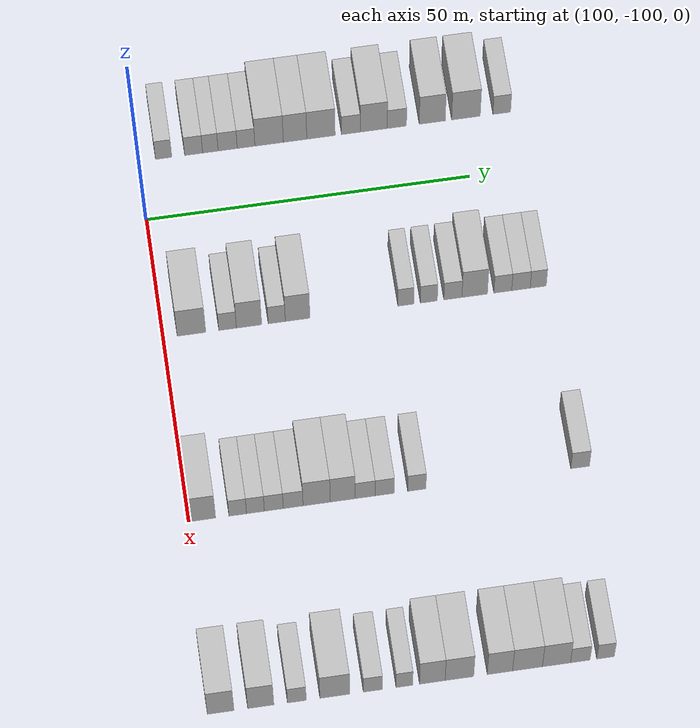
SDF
<sdf version="1.6">
 <world name="default">
  <model name="building_530">
   <static>1</static>
   <pose>85.0000 -96.0680 0 0.000000 0.000000 0.000000</pose>
   <link name="link">
    <pose>0 0 3.00 0 0 0</pose>
    <collision name="collision"><geometry><box><size>10.0000 2.5317 6.0000</size></box></geometry></collision>
    <visual name="visual">
     <cast_shadows>0</cast_shadows>
     <geometry><box><size>10.0000 2.5317 6.0000</size></box></geometry>
     <material>
      <script>
       <uri>model://HANNAS_wall/materials/scripts</uri>
       <uri>model://HANNAS_wall/materials/textures</uri>
       <name>vrc/HANNAS_wall</name>
      </script>
     </material>
    </visual>
   </link>
  </model>
  <model name="building_531">
   <static>1</static>
   <pose>85.0000 -91.4105 0 0.000000 0.000000 0.000000</pose>
   <link name="link">
    <pose>0 0 3.00 0 0 0</pose>
    <collision name="collision"><geometry><box><size>10.0000 2.7833 6.0000</size></box></geometry></collision>
    <visual name="visual">
     <cast_shadows>0</cast_shadows>
     <geometry><box><size>10.0000 2.7833 6.0000</size></box></geometry>
     <material>
      <script>
       <uri>model://HANNAS_wall/materials/scripts</uri>
       <uri>model://HANNAS_wall/materials/textures</uri>
       <name>vrc/HANNAS_wall</name>
      </script>
     </material>
    </visual>
   </link>
  </model>
  <model name="building_532">
   <static>1</static>
   <pose>85.0000 -88.8145 0 0.000000 0.000000 0.000000</pose>
   <link name="link">
    <pose>0 0 3.00 0 0 0</pose>
    <collision name="collision"><geometry><box><size>10.0000 2.4086 6.0000</size></box></geometry></collision>
    <visual name="visual">
     <cast_shadows>0</cast_shadows>
     <geometry><box><size>10.0000 2.4086 6.0000</size></box></geometry>
     <material>
      <script>
       <uri>model://HANNAS_wall/materials/scripts</uri>
       <uri>model://HANNAS_wall/materials/textures</uri>
       <name>vrc/HANNAS_wall</name>
      </script>
     </material>
    </visual>
   </link>
  </model>
  <model name="building_533">
   <static>1</static>
   <pose>85.0000 -86.1273 0 0.000000 0.000000 0.000000</pose>
   <link name="link">
    <pose>0 0 3.00 0 0 0</pose>
    <collision name="collision"><geometry><box><size>10.0000 2.9657 6.0000</size></box></geometry></collision>
    <visual name="visual">
     <cast_shadows>0</cast_shadows>
     <geometry><box><size>10.0000 2.9657 6.0000</size></box></geometry>
     <material>
      <script>
       <uri>model://HANNAS_wall/materials/scripts</uri>
       <uri>model://HANNAS_wall/materials/textures</uri>
       <name>vrc/HANNAS_wall</name>
      </script>
     </material>
    </visual>
   </link>
  </model>
  <model name="building_534">
   <static>1</static>
   <pose>85.0000 -83.2650 0 0.000000 0.000000 0.000000</pose>
   <link name="link">
    <pose>0 0 3.00 0 0 0</pose>
    <collision name="collision"><geometry><box><size>10.0000 2.7589 6.0000</size></box></geometry></collision>
    <visual name="visual">
     <cast_shadows>0</cast_shadows>
     <geometry><box><size>10.0000 2.7589 6.0000</size></box></geometry>
     <material>
      <script>
       <uri>model://HANNAS_wall/materials/scripts</uri>
       <uri>model://HANNAS_wall/materials/textures</uri>
       <name>vrc/HANNAS_wall</name>
      </script>
     </material>
    </visual>
   </link>
  </model>
  <model name="building_535">
   <static>1</static>
   <pose>85.0000 -79.6711 0 0.000000 0.000000 0.000000</pose>
   <link name="link">
    <pose>0 0 4.50 0 0 0</pose>
    <collision name="collision"><geometry><box><size>10.0000 4.4289 9.0000</size></box></geometry></collision>
    <visual name="visual">
     <cast_shadows>0</cast_shadows>
     <geometry><box><size>10.0000 4.4289 9.0000</size></box></geometry>
     <material>
      <script>
       <uri>model://HANNAS_wall/materials/scripts</uri>
       <uri>model://HANNAS_wall/materials/textures</uri>
       <name>vrc/HANNAS_wall</name>
      </script>
     </material>
    </visual>
   </link>
  </model>
  <model name="building_536">
   <static>1</static>
   <pose>85.0000 -75.6272 0 0.000000 0.000000 0.000000</pose>
   <link name="link">
    <pose>0 0 4.50 0 0 0</pose>
    <collision name="collision"><geometry><box><size>10.0000 3.6591 9.0000</size></box></geometry></collision>
    <visual name="visual">
     <cast_shadows>0</cast_shadows>
     <geometry><box><size>10.0000 3.6591 9.0000</size></box></geometry>
     <material>
      <script>
       <uri>model://HANNAS_wall/materials/scripts</uri>
       <uri>model://HANNAS_wall/materials/textures</uri>
       <name>vrc/HANNAS_wall</name>
      </script>
     </material>
    </visual>
   </link>
  </model>
  <model name="building_537">
   <static>1</static>
   <pose>85.0000 -71.5909 0 0.000000 0.000000 0.000000</pose>
   <link name="link">
    <pose>0 0 4.50 0 0 0</pose>
    <collision name="collision"><geometry><box><size>10.0000 4.4135 9.0000</size></box></geometry></collision>
    <visual name="visual">
     <cast_shadows>0</cast_shadows>
     <geometry><box><size>10.0000 4.4135 9.0000</size></box></geometry>
     <material>
      <script>
       <uri>model://HANNAS_wall/materials/scripts</uri>
       <uri>model://HANNAS_wall/materials/textures</uri>
       <name>vrc/HANNAS_wall</name>
      </script>
     </material>
    </visual>
   </link>
  </model>
  <model name="building_538">
   <static>1</static>
   <pose>85.0000 -66.9164 0 0.000000 0.000000 0.000000</pose>
   <link name="link">
    <pose>0 0 3.00 0 0 0</pose>
    <collision name="collision"><geometry><box><size>10.0000 2.9355 6.0000</size></box></geometry></collision>
    <visual name="visual">
     <cast_shadows>0</cast_shadows>
     <geometry><box><size>10.0000 2.9355 6.0000</size></box></geometry>
     <material>
      <script>
       <uri>model://HANNAS_wall/materials/scripts</uri>
       <uri>model://HANNAS_wall/materials/textures</uri>
       <name>vrc/HANNAS_wall</name>
      </script>
     </material>
    </visual>
   </link>
  </model>
  <model name="building_539">
   <static>1</static>
   <pose>85.0000 -63.3426 0 0.000000 0.000000 0.000000</pose>
   <link name="link">
    <pose>0 0 4.50 0 0 0</pose>
    <collision name="collision"><geometry><box><size>10.0000 4.2120 9.0000</size></box></geometry></collision>
    <visual name="visual">
     <cast_shadows>0</cast_shadows>
     <geometry><box><size>10.0000 4.2120 9.0000</size></box></geometry>
     <material>
      <script>
       <uri>model://HANNAS_wall/materials/scripts</uri>
       <uri>model://HANNAS_wall/materials/textures</uri>
       <name>vrc/HANNAS_wall</name>
      </script>
     </material>
    </visual>
   </link>
  </model>
  <model name="building_540">
   <static>1</static>
   <pose>85.0000 -59.7452 0 0.000000 0.000000 0.000000</pose>
   <link name="link">
    <pose>0 0 3.00 0 0 0</pose>
    <collision name="collision"><geometry><box><size>10.0000 2.9827 6.0000</size></box></geometry></collision>
    <visual name="visual">
     <cast_shadows>0</cast_shadows>
     <geometry><box><size>10.0000 2.9827 6.0000</size></box></geometry>
     <material>
      <script>
       <uri>model://HANNAS_wall/materials/scripts</uri>
       <uri>model://HANNAS_wall/materials/textures</uri>
       <name>vrc/HANNAS_wall</name>
      </script>
     </material>
    </visual>
   </link>
  </model>
  <model name="building_541">
   <static>1</static>
   <pose>85.0000 -54.2166 0 0.000000 0.000000 0.000000</pose>
   <link name="link">
    <pose>0 0 4.50 0 0 0</pose>
    <collision name="collision"><geometry><box><size>10.0000 4.0745 9.0000</size></box></geometry></collision>
    <visual name="visual">
     <cast_shadows>0</cast_shadows>
     <geometry><box><size>10.0000 4.0745 9.0000</size></box></geometry>
     <material>
      <script>
       <uri>model://HANNAS_wall/materials/scripts</uri>
       <uri>model://HANNAS_wall/materials/textures</uri>
       <name>vrc/HANNAS_wall</name>
      </script>
     </material>
    </visual>
   </link>
  </model>
  <model name="building_542">
   <static>1</static>
   <pose>85.0000 -48.9442 0 0.000000 0.000000 0.000000</pose>
   <link name="link">
    <pose>0 0 4.50 0 0 0</pose>
    <collision name="collision"><geometry><box><size>10.0000 4.4703 9.0000</size></box></geometry></collision>
    <visual name="visual">
     <cast_shadows>0</cast_shadows>
     <geometry><box><size>10.0000 4.4703 9.0000</size></box></geometry>
     <material>
      <script>
       <uri>model://HANNAS_wall/materials/scripts</uri>
       <uri>model://HANNAS_wall/materials/textures</uri>
       <name>vrc/HANNAS_wall</name>
      </script>
     </material>
    </visual>
   </link>
  </model>
  <model name="building_543">
   <static>1</static>
   <pose>85.0000 -43.3346 0 0.000000 0.000000 0.000000</pose>
   <link name="link">
    <pose>0 0 3.00 0 0 0</pose>
    <collision name="collision"><geometry><box><size>10.0000 2.7489 6.0000</size></box></geometry></collision>
    <visual name="visual">
     <cast_shadows>0</cast_shadows>
     <geometry><box><size>10.0000 2.7489 6.0000</size></box></geometry>
     <material>
      <script>
       <uri>model://HANNAS_wall/materials/scripts</uri>
       <uri>model://HANNAS_wall/materials/textures</uri>
       <name>vrc/HANNAS_wall</name>
      </script>
     </material>
    </visual>
   </link>
  </model>
  <model name="building_762">
   <static>1</static>
   <pose>115.0000 -95.6572 0 0.000000 0.000000 0.000000</pose>
   <link name="link">
    <pose>0 0 4.50 0 0 0</pose>
    <collision name="collision"><geometry><box><size>10.0000 4.3478 9.0000</size></box></geometry></collision>
    <visual name="visual">
     <cast_shadows>0</cast_shadows>
     <geometry><box><size>10.0000 4.3478 9.0000</size></box></geometry>
     <material>
      <script>
       <uri>model://HANNAS_wall/materials/scripts</uri>
       <uri>model://HANNAS_wall/materials/textures</uri>
       <name>vrc/HANNAS_wall</name>
      </script>
     </material>
    </visual>
   </link>
  </model>
  <model name="building_763">
   <static>1</static>
   <pose>115.0000 -90.1436 0 0.000000 0.000000 0.000000</pose>
   <link name="link">
    <pose>0 0 3.00 0 0 0</pose>
    <collision name="collision"><geometry><box><size>10.0000 2.6794 6.0000</size></box></geometry></collision>
    <visual name="visual">
     <cast_shadows>0</cast_shadows>
     <geometry><box><size>10.0000 2.6794 6.0000</size></box></geometry>
     <material>
      <script>
       <uri>model://HANNAS_wall/materials/scripts</uri>
       <uri>model://HANNAS_wall/materials/textures</uri>
       <name>vrc/HANNAS_wall</name>
      </script>
     </material>
    </visual>
   </link>
  </model>
  <model name="building_764">
   <static>1</static>
   <pose>115.0000 -86.8803 0 0.000000 0.000000 0.000000</pose>
   <link name="link">
    <pose>0 0 4.50 0 0 0</pose>
    <collision name="collision"><geometry><box><size>10.0000 3.8473 9.0000</size></box></geometry></collision>
    <visual name="visual">
     <cast_shadows>0</cast_shadows>
     <geometry><box><size>10.0000 3.8473 9.0000</size></box></geometry>
     <material>
      <script>
       <uri>model://HANNAS_wall/materials/scripts</uri>
       <uri>model://HANNAS_wall/materials/textures</uri>
       <name>vrc/HANNAS_wall</name>
      </script>
     </material>
    </visual>
   </link>
  </model>
  <model name="building_765">
   <static>1</static>
   <pose>115.0000 -82.6501 0 0.000000 0.000000 0.000000</pose>
   <link name="link">
    <pose>0 0 3.00 0 0 0</pose>
    <collision name="collision"><geometry><box><size>10.0000 2.6130 6.0000</size></box></geometry></collision>
    <visual name="visual">
     <cast_shadows>0</cast_shadows>
     <geometry><box><size>10.0000 2.6130 6.0000</size></box></geometry>
     <material>
      <script>
       <uri>model://HANNAS_wall/materials/scripts</uri>
       <uri>model://HANNAS_wall/materials/textures</uri>
       <name>vrc/HANNAS_wall</name>
      </script>
     </material>
    </visual>
   </link>
  </model>
  <model name="building_766">
   <static>1</static>
   <pose>115.0000 -79.4678 0 0.000000 0.000000 0.000000</pose>
   <link name="link">
    <pose>0 0 4.50 0 0 0</pose>
    <collision name="collision"><geometry><box><size>10.0000 3.7517 9.0000</size></box></geometry></collision>
    <visual name="visual">
     <cast_shadows>0</cast_shadows>
     <geometry><box><size>10.0000 3.7517 9.0000</size></box></geometry>
     <material>
      <script>
       <uri>model://HANNAS_wall/materials/scripts</uri>
       <uri>model://HANNAS_wall/materials/textures</uri>
       <name>vrc/HANNAS_wall</name>
      </script>
     </material>
    </visual>
   </link>
  </model>
  <model name="building_767">
   <static>1</static>
   <pose>115.0000 -62.9180 0 0.000000 0.000000 0.000000</pose>
   <link name="link">
    <pose>0 0 3.00 0 0 0</pose>
    <collision name="collision"><geometry><box><size>10.0000 2.4493 6.0000</size></box></geometry></collision>
    <visual name="visual">
     <cast_shadows>0</cast_shadows>
     <geometry><box><size>10.0000 2.4493 6.0000</size></box></geometry>
     <material>
      <script>
       <uri>model://HANNAS_wall/materials/scripts</uri>
       <uri>model://HANNAS_wall/materials/textures</uri>
       <name>vrc/HANNAS_wall</name>
      </script>
     </material>
    </visual>
   </link>
  </model>
  <model name="building_768">
   <static>1</static>
   <pose>115.0000 -59.3934 0 0.000000 0.000000 0.000000</pose>
   <link name="link">
    <pose>0 0 3.00 0 0 0</pose>
    <collision name="collision"><geometry><box><size>10.0000 2.5999 6.0000</size></box></geometry></collision>
    <visual name="visual">
     <cast_shadows>0</cast_shadows>
     <geometry><box><size>10.0000 2.5999 6.0000</size></box></geometry>
     <material>
      <script>
       <uri>model://HANNAS_wall/materials/scripts</uri>
       <uri>model://HANNAS_wall/materials/textures</uri>
       <name>vrc/HANNAS_wall</name>
      </script>
     </material>
    </visual>
   </link>
  </model>
  <model name="building_769">
   <static>1</static>
   <pose>115.0000 -55.7034 0 0.000000 0.000000 0.000000</pose>
   <link name="link">
    <pose>0 0 3.00 0 0 0</pose>
    <collision name="collision"><geometry><box><size>10.0000 2.7802 6.0000</size></box></geometry></collision>
    <visual name="visual">
     <cast_shadows>0</cast_shadows>
     <geometry><box><size>10.0000 2.7802 6.0000</size></box></geometry>
     <material>
      <script>
       <uri>model://HANNAS_wall/materials/scripts</uri>
       <uri>model://HANNAS_wall/materials/textures</uri>
       <name>vrc/HANNAS_wall</name>
      </script>
     </material>
    </visual>
   </link>
  </model>
  <model name="building_770">
   <static>1</static>
   <pose>115.0000 -52.3634 0 0.000000 0.000000 0.000000</pose>
   <link name="link">
    <pose>0 0 4.50 0 0 0</pose>
    <collision name="collision"><geometry><box><size>10.0000 3.8999 9.0000</size></box></geometry></collision>
    <visual name="visual">
     <cast_shadows>0</cast_shadows>
     <geometry><box><size>10.0000 3.8999 9.0000</size></box></geometry>
     <material>
      <script>
       <uri>model://HANNAS_wall/materials/scripts</uri>
       <uri>model://HANNAS_wall/materials/textures</uri>
       <name>vrc/HANNAS_wall</name>
      </script>
     </material>
    </visual>
   </link>
  </model>
  <model name="building_771">
   <static>1</static>
   <pose>115.0000 -48.0493 0 0.000000 0.000000 0.000000</pose>
   <link name="link">
    <pose>0 0 3.00 0 0 0</pose>
    <collision name="collision"><geometry><box><size>10.0000 2.7282 6.0000</size></box></geometry></collision>
    <visual name="visual">
     <cast_shadows>0</cast_shadows>
     <geometry><box><size>10.0000 2.7282 6.0000</size></box></geometry>
     <material>
      <script>
       <uri>model://HANNAS_wall/materials/scripts</uri>
       <uri>model://HANNAS_wall/materials/textures</uri>
       <name>vrc/HANNAS_wall</name>
      </script>
     </material>
    </visual>
   </link>
  </model>
  <model name="building_772">
   <static>1</static>
   <pose>115.0000 -45.2593 0 0.000000 0.000000 0.000000</pose>
   <link name="link">
    <pose>0 0 3.00 0 0 0</pose>
    <collision name="collision"><geometry><box><size>10.0000 2.8518 6.0000</size></box></geometry></collision>
    <visual name="visual">
     <cast_shadows>0</cast_shadows>
     <geometry><box><size>10.0000 2.8518 6.0000</size></box></geometry>
     <material>
      <script>
       <uri>model://HANNAS_wall/materials/scripts</uri>
       <uri>model://HANNAS_wall/materials/textures</uri>
       <name>vrc/HANNAS_wall</name>
      </script>
     </material>
    </visual>
   </link>
  </model>
  <model name="building_773">
   <static>1</static>
   <pose>115.0000 -42.6046 0 0.000000 0.000000 0.000000</pose>
   <link name="link">
    <pose>0 0 3.00 0 0 0</pose>
    <collision name="collision"><geometry><box><size>10.0000 2.4575 6.0000</size></box></geometry></collision>
    <visual name="visual">
     <cast_shadows>0</cast_shadows>
     <geometry><box><size>10.0000 2.4575 6.0000</size></box></geometry>
     <material>
      <script>
       <uri>model://HANNAS_wall/materials/scripts</uri>
       <uri>model://HANNAS_wall/materials/textures</uri>
       <name>vrc/HANNAS_wall</name>
      </script>
     </material>
    </visual>
   </link>
  </model>
  <model name="building_985">
   <static>1</static>
   <pose>145.0000 -98.2015 0 0.000000 0.000000 0.000000</pose>
   <link name="link">
    <pose>0 0 4.50 0 0 0</pose>
    <collision name="collision"><geometry><box><size>10.0000 4.4924 9.0000</size></box></geometry></collision>
    <visual name="visual">
     <cast_shadows>0</cast_shadows>
     <geometry><box><size>10.0000 4.4924 9.0000</size></box></geometry>
     <material>
      <script>
       <uri>model://HANNAS_wall/materials/scripts</uri>
       <uri>model://HANNAS_wall/materials/textures</uri>
       <name>vrc/HANNAS_wall</name>
      </script>
     </material>
    </visual>
   </link>
  </model>
  <model name="building_986">
   <static>1</static>
   <pose>145.0000 -92.6456 0 0.000000 0.000000 0.000000</pose>
   <link name="link">
    <pose>0 0 3.00 0 0 0</pose>
    <collision name="collision"><geometry><box><size>10.0000 2.6193 6.0000</size></box></geometry></collision>
    <visual name="visual">
     <cast_shadows>0</cast_shadows>
     <geometry><box><size>10.0000 2.6193 6.0000</size></box></geometry>
     <material>
      <script>
       <uri>model://HANNAS_wall/materials/scripts</uri>
       <uri>model://HANNAS_wall/materials/textures</uri>
       <name>vrc/HANNAS_wall</name>
      </script>
     </material>
    </visual>
   </link>
  </model>
  <model name="building_987">
   <static>1</static>
   <pose>145.0000 -90.0050 0 0.000000 0.000000 0.000000</pose>
   <link name="link">
    <pose>0 0 3.00 0 0 0</pose>
    <collision name="collision"><geometry><box><size>10.0000 2.6620 6.0000</size></box></geometry></collision>
    <visual name="visual">
     <cast_shadows>0</cast_shadows>
     <geometry><box><size>10.0000 2.6620 6.0000</size></box></geometry>
     <material>
      <script>
       <uri>model://HANNAS_wall/materials/scripts</uri>
       <uri>model://HANNAS_wall/materials/textures</uri>
       <name>vrc/HANNAS_wall</name>
      </script>
     </material>
    </visual>
   </link>
  </model>
  <model name="building_988">
   <static>1</static>
   <pose>145.0000 -87.2623 0 0.000000 0.000000 0.000000</pose>
   <link name="link">
    <pose>0 0 3.00 0 0 0</pose>
    <collision name="collision"><geometry><box><size>10.0000 2.8235 6.0000</size></box></geometry></collision>
    <visual name="visual">
     <cast_shadows>0</cast_shadows>
     <geometry><box><size>10.0000 2.8235 6.0000</size></box></geometry>
     <material>
      <script>
       <uri>model://HANNAS_wall/materials/scripts</uri>
       <uri>model://HANNAS_wall/materials/textures</uri>
       <name>vrc/HANNAS_wall</name>
      </script>
     </material>
    </visual>
   </link>
  </model>
  <model name="building_989">
   <static>1</static>
   <pose>145.0000 -84.3665 0 0.000000 0.000000 0.000000</pose>
   <link name="link">
    <pose>0 0 3.00 0 0 0</pose>
    <collision name="collision"><geometry><box><size>10.0000 2.9680 6.0000</size></box></geometry></collision>
    <visual name="visual">
     <cast_shadows>0</cast_shadows>
     <geometry><box><size>10.0000 2.9680 6.0000</size></box></geometry>
     <material>
      <script>
       <uri>model://HANNAS_wall/materials/scripts</uri>
       <uri>model://HANNAS_wall/materials/textures</uri>
       <name>vrc/HANNAS_wall</name>
      </script>
     </material>
    </visual>
   </link>
  </model>
  <model name="building_990">
   <static>1</static>
   <pose>145.0000 -80.8509 0 0.000000 0.000000 0.000000</pose>
   <link name="link">
    <pose>0 0 4.50 0 0 0</pose>
    <collision name="collision"><geometry><box><size>10.0000 4.0632 9.0000</size></box></geometry></collision>
    <visual name="visual">
     <cast_shadows>0</cast_shadows>
     <geometry><box><size>10.0000 4.0632 9.0000</size></box></geometry>
     <material>
      <script>
       <uri>model://HANNAS_wall/materials/scripts</uri>
       <uri>model://HANNAS_wall/materials/textures</uri>
       <name>vrc/HANNAS_wall</name>
      </script>
     </material>
    </visual>
   </link>
  </model>
  <model name="building_991">
   <static>1</static>
   <pose>145.0000 -76.9511 0 0.000000 0.000000 0.000000</pose>
   <link name="link">
    <pose>0 0 4.50 0 0 0</pose>
    <collision name="collision"><geometry><box><size>10.0000 3.7365 9.0000</size></box></geometry></collision>
    <visual name="visual">
     <cast_shadows>0</cast_shadows>
     <geometry><box><size>10.0000 3.7365 9.0000</size></box></geometry>
     <material>
      <script>
       <uri>model://HANNAS_wall/materials/scripts</uri>
       <uri>model://HANNAS_wall/materials/textures</uri>
       <name>vrc/HANNAS_wall</name>
      </script>
     </material>
    </visual>
   </link>
  </model>
  <model name="building_992">
   <static>1</static>
   <pose>145.0000 -73.5906 0 0.000000 0.000000 0.000000</pose>
   <link name="link">
    <pose>0 0 3.00 0 0 0</pose>
    <collision name="collision"><geometry><box><size>10.0000 2.9845 6.0000</size></box></geometry></collision>
    <visual name="visual">
     <cast_shadows>0</cast_shadows>
     <geometry><box><size>10.0000 2.9845 6.0000</size></box></geometry>
     <material>
      <script>
       <uri>model://HANNAS_wall/materials/scripts</uri>
       <uri>model://HANNAS_wall/materials/textures</uri>
       <name>vrc/HANNAS_wall</name>
      </script>
     </material>
    </visual>
   </link>
  </model>
  <model name="building_993">
   <static>1</static>
   <pose>145.0000 -70.6553 0 0.000000 0.000000 0.000000</pose>
   <link name="link">
    <pose>0 0 3.00 0 0 0</pose>
    <collision name="collision"><geometry><box><size>10.0000 2.8861 6.0000</size></box></geometry></collision>
    <visual name="visual">
     <cast_shadows>0</cast_shadows>
     <geometry><box><size>10.0000 2.8861 6.0000</size></box></geometry>
     <material>
      <script>
       <uri>model://HANNAS_wall/materials/scripts</uri>
       <uri>model://HANNAS_wall/materials/textures</uri>
       <name>vrc/HANNAS_wall</name>
      </script>
     </material>
    </visual>
   </link>
  </model>
  <model name="building_994">
   <static>1</static>
   <pose>145.0000 -65.8470 0 0.000000 0.000000 0.000000</pose>
   <link name="link">
    <pose>0 0 3.00 0 0 0</pose>
    <collision name="collision"><geometry><box><size>10.0000 2.7307 6.0000</size></box></geometry></collision>
    <visual name="visual">
     <cast_shadows>0</cast_shadows>
     <geometry><box><size>10.0000 2.7307 6.0000</size></box></geometry>
     <material>
      <script>
       <uri>model://HANNAS_wall/materials/scripts</uri>
       <uri>model://HANNAS_wall/materials/textures</uri>
       <name>vrc/HANNAS_wall</name>
      </script>
     </material>
    </visual>
   </link>
  </model>
  <model name="building_995">
   <static>1</static>
   <pose>145.0000 -41.2814 0 0.000000 0.000000 0.000000</pose>
   <link name="link">
    <pose>0 0 3.00 0 0 0</pose>
    <collision name="collision"><geometry><box><size>10.0000 2.8001 6.0000</size></box></geometry></collision>
    <visual name="visual">
     <cast_shadows>0</cast_shadows>
     <geometry><box><size>10.0000 2.8001 6.0000</size></box></geometry>
     <material>
      <script>
       <uri>model://HANNAS_wall/materials/scripts</uri>
       <uri>model://HANNAS_wall/materials/textures</uri>
       <name>vrc/HANNAS_wall</name>
      </script>
     </material>
    </visual>
   </link>
  </model>
  <model name="building_1208">
   <static>1</static>
   <pose>175.0000 -99.1918 0 0.000000 0.000000 0.000000</pose>
   <link name="link">
    <pose>0 0 4.50 0 0 0</pose>
    <collision name="collision"><geometry><box><size>10.0000 3.8965 9.0000</size></box></geometry></collision>
    <visual name="visual">
     <cast_shadows>0</cast_shadows>
     <geometry><box><size>10.0000 3.8965 9.0000</size></box></geometry>
     <material>
      <script>
       <uri>model://HANNAS_wall/materials/scripts</uri>
       <uri>model://HANNAS_wall/materials/textures</uri>
       <name>vrc/HANNAS_wall</name>
      </script>
     </material>
    </visual>
   </link>
  </model>
  <model name="building_1209">
   <static>1</static>
   <pose>175.0000 -93.3314 0 0.000000 0.000000 0.000000</pose>
   <link name="link">
    <pose>0 0 4.50 0 0 0</pose>
    <collision name="collision"><geometry><box><size>10.0000 3.8244 9.0000</size></box></geometry></collision>
    <visual name="visual">
     <cast_shadows>0</cast_shadows>
     <geometry><box><size>10.0000 3.8244 9.0000</size></box></geometry>
     <material>
      <script>
       <uri>model://HANNAS_wall/materials/scripts</uri>
       <uri>model://HANNAS_wall/materials/textures</uri>
       <name>vrc/HANNAS_wall</name>
      </script>
     </material>
    </visual>
   </link>
  </model>
  <model name="building_1210">
   <static>1</static>
   <pose>175.0000 -88.0474 0 0.000000 0.000000 0.000000</pose>
   <link name="link">
    <pose>0 0 3.00 0 0 0</pose>
    <collision name="collision"><geometry><box><size>10.0000 2.7438 6.0000</size></box></geometry></collision>
    <visual name="visual">
     <cast_shadows>0</cast_shadows>
     <geometry><box><size>10.0000 2.7438 6.0000</size></box></geometry>
     <material>
      <script>
       <uri>model://HANNAS_wall/materials/scripts</uri>
       <uri>model://HANNAS_wall/materials/textures</uri>
       <name>vrc/HANNAS_wall</name>
      </script>
     </material>
    </visual>
   </link>
  </model>
  <model name="building_1211">
   <static>1</static>
   <pose>175.0000 -82.4904 0 0.000000 0.000000 0.000000</pose>
   <link name="link">
    <pose>0 0 4.50 0 0 0</pose>
    <collision name="collision"><geometry><box><size>10.0000 4.3701 9.0000</size></box></geometry></collision>
    <visual name="visual">
     <cast_shadows>0</cast_shadows>
     <geometry><box><size>10.0000 4.3701 9.0000</size></box></geometry>
     <material>
      <script>
       <uri>model://HANNAS_wall/materials/scripts</uri>
       <uri>model://HANNAS_wall/materials/textures</uri>
       <name>vrc/HANNAS_wall</name>
      </script>
     </material>
    </visual>
   </link>
  </model>
  <model name="building_1212">
   <static>1</static>
   <pose>175.0000 -76.9031 0 0.000000 0.000000 0.000000</pose>
   <link name="link">
    <pose>0 0 3.00 0 0 0</pose>
    <collision name="collision"><geometry><box><size>10.0000 2.8047 6.0000</size></box></geometry></collision>
    <visual name="visual">
     <cast_shadows>0</cast_shadows>
     <geometry><box><size>10.0000 2.8047 6.0000</size></box></geometry>
     <material>
      <script>
       <uri>model://HANNAS_wall/materials/scripts</uri>
       <uri>model://HANNAS_wall/materials/textures</uri>
       <name>vrc/HANNAS_wall</name>
      </script>
     </material>
    </visual>
   </link>
  </model>
  <model name="building_1213">
   <static>1</static>
   <pose>175.0000 -72.2775 0 0.000000 0.000000 0.000000</pose>
   <link name="link">
    <pose>0 0 3.00 0 0 0</pose>
    <collision name="collision"><geometry><box><size>10.0000 2.4464 6.0000</size></box></geometry></collision>
    <visual name="visual">
     <cast_shadows>0</cast_shadows>
     <geometry><box><size>10.0000 2.4464 6.0000</size></box></geometry>
     <material>
      <script>
       <uri>model://HANNAS_wall/materials/scripts</uri>
       <uri>model://HANNAS_wall/materials/textures</uri>
       <name>vrc/HANNAS_wall</name>
      </script>
     </material>
    </visual>
   </link>
  </model>
  <model name="building_1214">
   <static>1</static>
   <pose>175.0000 -68.1742 0 0.000000 0.000000 0.000000</pose>
   <link name="link">
    <pose>0 0 4.50 0 0 0</pose>
    <collision name="collision"><geometry><box><size>10.0000 3.7603 9.0000</size></box></geometry></collision>
    <visual name="visual">
     <cast_shadows>0</cast_shadows>
     <geometry><box><size>10.0000 3.7603 9.0000</size></box></geometry>
     <material>
      <script>
       <uri>model://HANNAS_wall/materials/scripts</uri>
       <uri>model://HANNAS_wall/materials/textures</uri>
       <name>vrc/HANNAS_wall</name>
      </script>
     </material>
    </visual>
   </link>
  </model>
  <model name="building_1215">
   <static>1</static>
   <pose>175.0000 -64.1934 0 0.000000 0.000000 0.000000</pose>
   <link name="link">
    <pose>0 0 4.50 0 0 0</pose>
    <collision name="collision"><geometry><box><size>10.0000 4.2013 9.0000</size></box></geometry></collision>
    <visual name="visual">
     <cast_shadows>0</cast_shadows>
     <geometry><box><size>10.0000 4.2013 9.0000</size></box></geometry>
     <material>
      <script>
       <uri>model://HANNAS_wall/materials/scripts</uri>
       <uri>model://HANNAS_wall/materials/textures</uri>
       <name>vrc/HANNAS_wall</name>
      </script>
     </material>
    </visual>
   </link>
  </model>
  <model name="building_1216">
   <static>1</static>
   <pose>175.0000 -58.2281 0 0.000000 0.000000 0.000000</pose>
   <link name="link">
    <pose>0 0 4.50 0 0 0</pose>
    <collision name="collision"><geometry><box><size>10.0000 3.7293 9.0000</size></box></geometry></collision>
    <visual name="visual">
     <cast_shadows>0</cast_shadows>
     <geometry><box><size>10.0000 3.7293 9.0000</size></box></geometry>
     <material>
      <script>
       <uri>model://HANNAS_wall/materials/scripts</uri>
       <uri>model://HANNAS_wall/materials/textures</uri>
       <name>vrc/HANNAS_wall</name>
      </script>
     </material>
    </visual>
   </link>
  </model>
  <model name="building_1217">
   <static>1</static>
   <pose>175.0000 -54.1617 0 0.000000 0.000000 0.000000</pose>
   <link name="link">
    <pose>0 0 4.50 0 0 0</pose>
    <collision name="collision"><geometry><box><size>10.0000 4.4036 9.0000</size></box></geometry></collision>
    <visual name="visual">
     <cast_shadows>0</cast_shadows>
     <geometry><box><size>10.0000 4.4036 9.0000</size></box></geometry>
     <material>
      <script>
       <uri>model://HANNAS_wall/materials/scripts</uri>
       <uri>model://HANNAS_wall/materials/textures</uri>
       <name>vrc/HANNAS_wall</name>
      </script>
     </material>
    </visual>
   </link>
  </model>
  <model name="building_1218">
   <static>1</static>
   <pose>175.0000 -49.8915 0 0.000000 0.000000 0.000000</pose>
   <link name="link">
    <pose>0 0 4.50 0 0 0</pose>
    <collision name="collision"><geometry><box><size>10.0000 4.1368 9.0000</size></box></geometry></collision>
    <visual name="visual">
     <cast_shadows>0</cast_shadows>
     <geometry><box><size>10.0000 4.1368 9.0000</size></box></geometry>
     <material>
      <script>
       <uri>model://HANNAS_wall/materials/scripts</uri>
       <uri>model://HANNAS_wall/materials/textures</uri>
       <name>vrc/HANNAS_wall</name>
      </script>
     </material>
    </visual>
   </link>
  </model>
  <model name="building_1219">
   <static>1</static>
   <pose>175.0000 -46.3783 0 0.000000 0.000000 0.000000</pose>
   <link name="link">
    <pose>0 0 3.00 0 0 0</pose>
    <collision name="collision"><geometry><box><size>10.0000 2.8896 6.0000</size></box></geometry></collision>
    <visual name="visual">
     <cast_shadows>0</cast_shadows>
     <geometry><box><size>10.0000 2.8896 6.0000</size></box></geometry>
     <material>
      <script>
       <uri>model://HANNAS_wall/materials/scripts</uri>
       <uri>model://HANNAS_wall/materials/textures</uri>
       <name>vrc/HANNAS_wall</name>
      </script>
     </material>
    </visual>
   </link>
  </model>
  <model name="building_1220">
   <static>1</static>
   <pose>175.0000 -42.6459 0 0.000000 0.000000 0.000000</pose>
   <link name="link">
    <pose>0 0 3.00 0 0 0</pose>
    <collision name="collision"><geometry><box><size>10.0000 2.5752 6.0000</size></box></geometry></collision>
    <visual name="visual">
     <cast_shadows>0</cast_shadows>
     <geometry><box><size>10.0000 2.5752 6.0000</size></box></geometry>
     <material>
      <script>
       <uri>model://HANNAS_wall/materials/scripts</uri>
       <uri>model://HANNAS_wall/materials/textures</uri>
       <name>vrc/HANNAS_wall</name>
      </script>
     </material>
    </visual>
   </link>
  </model>
 </world>
</sdf>
